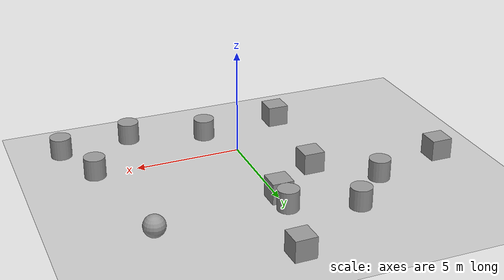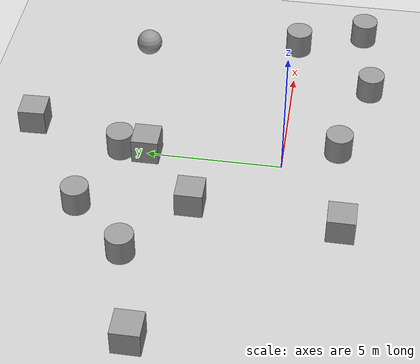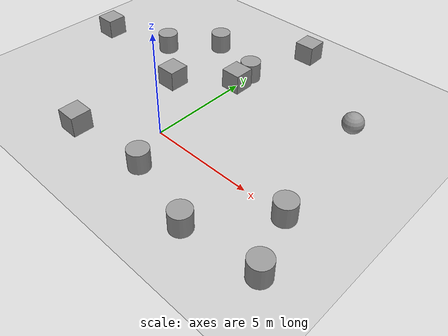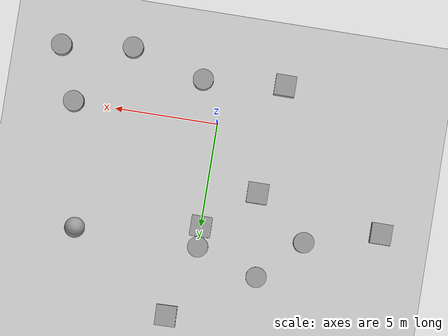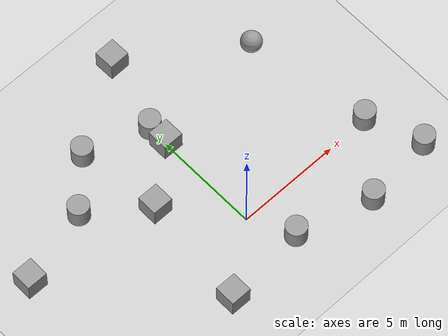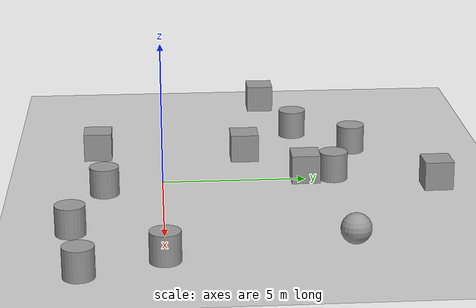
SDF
<sdf version="1.4">
 <world name="default">
  <light name="sun" type="directional">
   <pose>0 0 10 0 -0 0</pose>
   <diffuse>0.8 0.8 0.8 1</diffuse>
   <specular>0.2 0.2 0.2 1</specular>
   <attenuation>
    <range>1000</range>
    <constant>0.9</constant>
    <linear>0.01</linear>
    <quadratic>0.001</quadratic>
   </attenuation>
   <direction>-0.5 0.1 -0.9</direction>
  </light>
  <model name="ground_plane">
   <static>1</static>
   <link name="link">
    <collision name="collision">
     <geometry><plane><normal>0 0 1</normal><size>100 100</size></plane></geometry>
     <surface><friction><ode><mu>100</mu><mu2>50</mu2></ode></friction></surface>
    </collision>
    <visual name="visual">
     <cast_shadows>0</cast_shadows>
     <geometry><plane><normal>0 0 1</normal><size>100 100</size></plane></geometry>
     <material>
      <script><uri>file://media/materials/scripts/gazebo.material</uri><name>Gazebo/Grey</name></script>
     </material>
    </visual>
    <velocity_decay><linear>0</linear><angular>0</angular></velocity_decay>
   </link>
  </model>
  <physics type="ode">
   <max_step_size>0.001</max_step_size>
   <real_time_factor>1</real_time_factor>
   <real_time_update_rate>0</real_time_update_rate>
   <gravity>0 0 -9.8</gravity>
  </physics>
  <scene><ambient>0.4 0.4 0.4 1</ambient><background>0.7 0.7 0.7 1</background><shadows>1</shadows></scene>
  <spherical_coordinates>
   <surface_model>EARTH_WGS84</surface_model>
   <latitude_deg>0</latitude_deg>
   <longitude_deg>0</longitude_deg>
   <elevation>0</elevation>
   <heading_deg>0</heading_deg>
  </spherical_coordinates>
  <model name="unit_cylinder_2_0">
   <pose>4.57299 -3 0.499998 -0 -0 -0</pose>
   <link name="link">
    <inertial>
     <mass>1</mass>
     <inertia><ixx>1</ixx><ixy>0</ixy><ixz>0</ixz><iyy>1</iyy><iyz>0</iyz><izz>1</izz></inertia>
    </inertial>
    <collision name="collision">
     <geometry><cylinder><radius>0.5</radius><length>1</length></cylinder></geometry>
    </collision>
    <visual name="visual">
     <geometry><cylinder><radius>0.5</radius><length>1</length></cylinder></geometry>
     <material>
      <script><uri>file://media/materials/scripts/gazebo.material</uri><name>Gazebo/Grey</name></script>
     </material>
    </visual>
    <velocity_decay><linear>0</linear><angular>0</angular></velocity_decay>
   </link>
   <static>0</static>
  </model>
  <model name="unit_cylinder_3_0">
   <pose>7 0 0.499998 -0 -0 -0</pose>
   <link name="link">
    <inertial>
     <mass>1</mass>
     <inertia><ixx>1</ixx><ixy>0</ixy><ixz>0</ixz><iyy>1</iyy><iyz>0</iyz><izz>1</izz></inertia>
    </inertial>
    <collision name="collision">
     <geometry><cylinder><radius>0.5</radius><length>1</length></cylinder></geometry>
    </collision>
    <visual name="visual">
     <geometry><cylinder><radius>0.5</radius><length>1</length></cylinder></geometry>
     <material>
      <script><uri>file://media/materials/scripts/gazebo.material</uri><name>Gazebo/Grey</name></script>
     </material>
    </visual>
    <velocity_decay><linear>0</linear><angular>0</angular></velocity_decay>
   </link>
   <static>0</static>
  </model>
  <model name="unit_cylinder_5_0">
   <pose>8 -2.59398 0.499998 -0 -0 -0</pose>
   <link name="link">
    <inertial>
     <mass>1</mass>
     <inertia><ixx>1</ixx><ixy>0</ixy><ixz>0</ixz><iyy>1</iyy><iyz>0</iyz><izz>1</izz></inertia>
    </inertial>
    <collision name="collision">
     <geometry><cylinder><radius>0.5</radius><length>1</length></cylinder></geometry>
    </collision>
    <visual name="visual">
     <geometry><cylinder><radius>0.5</radius><length>1</length></cylinder></geometry>
     <material>
      <script><uri>file://media/materials/scripts/gazebo.material</uri><name>Gazebo/Grey</name></script>
     </material>
    </visual>
    <velocity_decay><linear>0</linear><angular>0</angular></velocity_decay>
   </link>
   <static>0</static>
  </model>
  <model name="unit_cylinder_7_0">
   <pose>-5 5 0.499998 -0 -0 -0</pose>
   <link name="link">
    <inertial>
     <mass>1</mass>
     <inertia><ixx>1</ixx><ixy>0</ixy><ixz>0</ixz><iyy>1</iyy><iyz>0</iyz><izz>1</izz></inertia>
    </inertial>
    <collision name="collision">
     <geometry><cylinder><radius>0.5</radius><length>1</length></cylinder></geometry>
    </collision>
    <visual name="visual">
     <geometry><cylinder><radius>0.5</radius><length>1</length></cylinder></geometry>
     <material>
      <script><uri>file://media/materials/scripts/gazebo.material</uri><name>Gazebo/Grey</name></script>
     </material>
    </visual>
    <velocity_decay><linear>0</linear><angular>0</angular></velocity_decay>
   </link>
   <static>0</static>
  </model>
  <model name="unit_cylinder_8_0">
   <pose>-3 7 0.499998 -0 -0 -0</pose>
   <link name="link">
    <inertial>
     <mass>1</mass>
     <inertia><ixx>1</ixx><ixy>0</ixy><ixz>0</ixz><iyy>1</iyy><iyz>0</iyz><izz>1</izz></inertia>
    </inertial>
    <collision name="collision">
     <geometry><cylinder><radius>0.5</radius><length>1</length></cylinder></geometry>
    </collision>
    <visual name="visual">
     <geometry><cylinder><radius>0.5</radius><length>1</length></cylinder></geometry>
     <material>
      <script><uri>file://media/materials/scripts/gazebo.material</uri><name>Gazebo/Grey</name></script>
     </material>
    </visual>
    <velocity_decay><linear>0</linear><angular>0</angular></velocity_decay>
   </link>
   <static>0</static>
  </model>
  <model name="unit_box_5_0">
   <pose>-2.94674 -2.32619 0.5 0 -0 -0.006064</pose>
   <link name="link">
    <inertial>
     <mass>1</mass>
     <inertia><ixx>1</ixx><ixy>0</ixy><ixz>0</ixz><iyy>1</iyy><iyz>0</iyz><izz>1</izz></inertia>
    </inertial>
    <collision name="collision"><geometry><box><size>1 1 1</size></box></geometry></collision>
    <visual name="visual">
     <geometry><box><size>1 1 1</size></box></geometry>
     <material>
      <script><uri>file://media/materials/scripts/gazebo.material</uri><name>Gazebo/Grey</name></script>
     </material>
    </visual>
    <velocity_decay><linear>0</linear><angular>0</angular></velocity_decay>
   </link>
   <static>0</static>
  </model>
  <model name="unit_box_6_0">
   <pose>0.996816 9.49637 0.5 0 -0 0.024677</pose>
   <link name="link">
    <inertial>
     <mass>1</mass>
     <inertia><ixx>1</ixx><ixy>0</ixy><ixz>0</ixz><iyy>1</iyy><iyz>0</iyz><izz>1</izz></inertia>
    </inertial>
    <collision name="collision"><geometry><box><size>1 1 1</size></box></geometry></collision>
    <visual name="visual">
     <geometry><box><size>1 1 1</size></box></geometry>
     <material>
      <script><uri>file://media/materials/scripts/gazebo.material</uri><name>Gazebo/Grey</name></script>
     </material>
    </visual>
    <velocity_decay><linear>0</linear><angular>0</angular></velocity_decay>
   </link>
   <static>0</static>
  </model>
  <model name="unit_box_7">
   <pose>-8.61496 4.00427 0.5 0 -0 -0.000545</pose>
   <link name="link">
    <inertial>
     <mass>1</mass>
     <inertia><ixx>1</ixx><ixy>0</ixy><ixz>0</ixz><iyy>1</iyy><iyz>0</iyz><izz>1</izz></inertia>
    </inertial>
    <collision name="collision"><geometry><box><size>1 1 1</size></box></geometry></collision>
    <visual name="visual">
     <geometry><box><size>1 1 1</size></box></geometry>
     <material>
      <script><uri>file://media/materials/scripts/gazebo.material</uri><name>Gazebo/Grey</name></script>
     </material>
    </visual>
    <velocity_decay><linear>0</linear><angular>0</angular></velocity_decay>
   </link>
   <static>0</static>
  </model>
  <model name="unit_sphere_1">
   <pose>6 6 0.5 0 -0 0</pose>
   <link name="link">
    <inertial>
     <mass>1</mass>
     <inertia><ixx>1</ixx><ixy>0</ixy><ixz>0</ixz><iyy>1</iyy><iyz>0</iyz><izz>1</izz></inertia>
    </inertial>
    <collision name="collision"><geometry><sphere><radius>0.5</radius></sphere></geometry></collision>
    <visual name="visual">
     <geometry><sphere><radius>0.5</radius></sphere></geometry>
     <material>
      <script><uri>file://media/materials/scripts/gazebo.material</uri><name>Gazebo/Grey</name></script>
     </material>
    </visual>
    <velocity_decay><linear>0</linear><angular>0</angular></velocity_decay>
   </link>
   <static>0</static>
  </model>
  <model name="unit_cylinder_12">
   <pose>1 -2 0.499996 1e-06 -1e-06 0</pose>
   <link name="link">
    <inertial>
     <mass>1</mass>
     <inertia><ixx>1</ixx><ixy>0</ixy><ixz>0</ixz><iyy>1</iyy><iyz>0</iyz><izz>1</izz></inertia>
    </inertial>
    <collision name="collision">
     <geometry><cylinder><radius>0.5</radius><length>1</length></cylinder></geometry>
    </collision>
    <visual name="visual">
     <geometry><cylinder><radius>0.5</radius><length>1</length></cylinder></geometry>
     <material>
      <script><uri>file://media/materials/scripts/gazebo.material</uri><name>Gazebo/Grey</name></script>
     </material>
    </visual>
    <velocity_decay><linear>0</linear><angular>0</angular></velocity_decay>
   </link>
   <static>0</static>
  </model>
  <model name="unit_cylinder_14">
   <pose>-0 6 0.499992 -1e-06 0 0</pose>
   <link name="link">
    <inertial>
     <mass>1</mass>
     <inertia><ixx>1</ixx><ixy>0</ixy><ixz>0</ixz><iyy>1</iyy><iyz>0</iyz><izz>1</izz></inertia>
    </inertial>
    <collision name="collision">
     <geometry><cylinder><radius>0.5</radius><length>1</length></cylinder></geometry>
    </collision>
    <visual name="visual">
     <geometry><cylinder><radius>0.5</radius><length>1</length></cylinder></geometry>
     <material>
      <script><uri>file://media/materials/scripts/gazebo.material</uri><name>Gazebo/Grey</name></script>
     </material>
    </visual>
    <velocity_decay><linear>0</linear><angular>0</angular></velocity_decay>
   </link>
   <static>0</static>
  </model>
  <model name="unit_box_1">
   <pose>-0 5 0.5 0 -0 0</pose>
   <link name="link">
    <inertial>
     <mass>1</mass>
     <inertia><ixx>1</ixx><ixy>0</ixy><ixz>0</ixz><iyy>1</iyy><iyz>0</iyz><izz>1</izz></inertia>
    </inertial>
    <collision name="collision"><geometry><box><size>1 1 1</size></box></geometry></collision>
    <visual name="visual">
     <geometry><box><size>1 1 1</size></box></geometry>
     <material>
      <script><uri>file://media/materials/scripts/gazebo.material</uri><name>Gazebo/Grey</name></script>
     </material>
    </visual>
    <velocity_decay><linear>0</linear><angular>0</angular></velocity_decay>
   </link>
   <static>0</static>
  </model>
  <model name="unit_box_2">
   <pose>-2.44425 3 0.5 0 -0 0</pose>
   <link name="link">
    <inertial>
     <mass>1</mass>
     <inertia><ixx>1</ixx><ixy>0</ixy><ixz>0</ixz><iyy>1</iyy><iyz>0</iyz><izz>1</izz></inertia>
    </inertial>
    <collision name="collision"><geometry><box><size>1 1 1</size></box></geometry></collision>
    <visual name="visual">
     <geometry><box><size>1 1 1</size></box></geometry>
     <material>
      <script><uri>file://media/materials/scripts/gazebo.material</uri><name>Gazebo/Grey</name></script>
     </material>
    </visual>
    <velocity_decay><linear>0</linear><angular>0</angular></velocity_decay>
   </link>
   <static>0</static>
  </model>
 </world>
</sdf>
